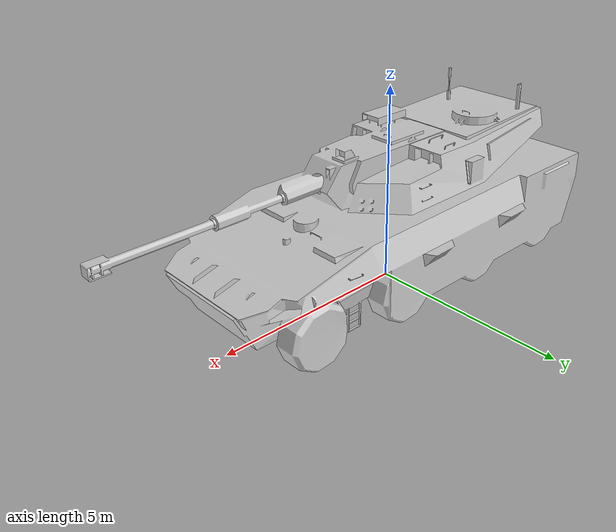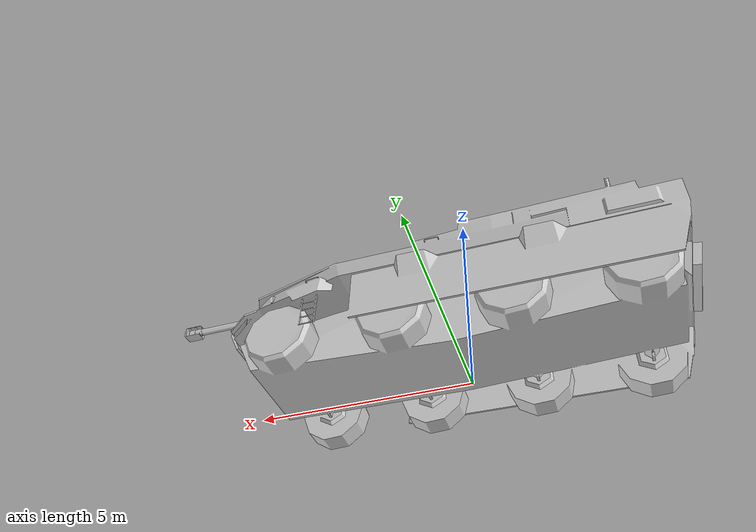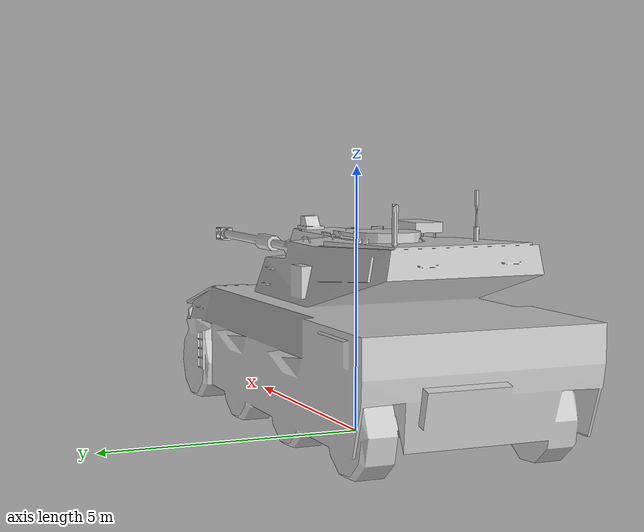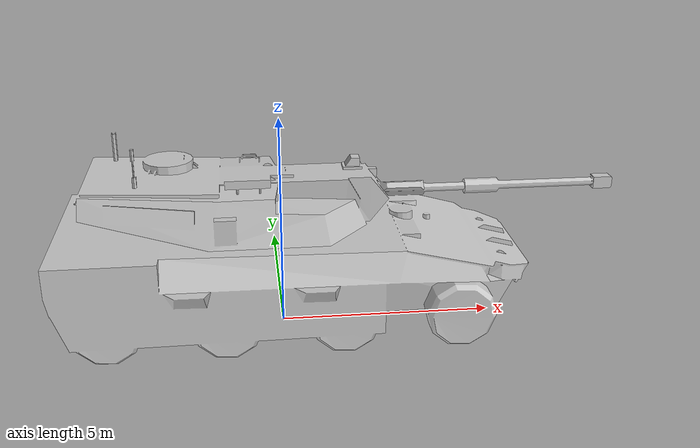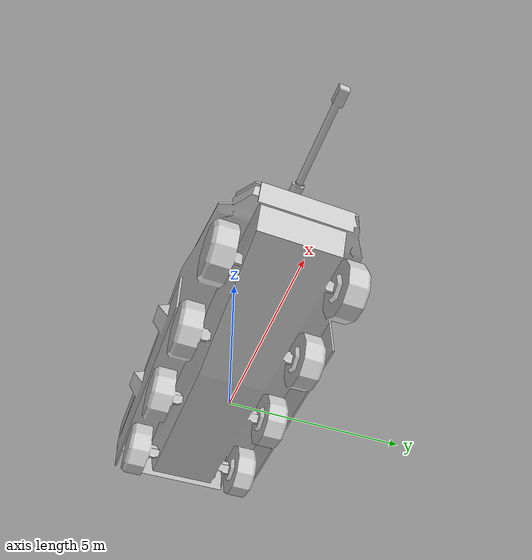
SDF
<?xml version='1.0'?>
<sdf version='1.5'>
  <model name='Tank'>
    <static>true</static>
    <link name="tank">

        <visual name="visual">
        <geometry>
                <mesh>
                    <uri>model://tank/meshes/tank.dae</uri>
                </mesh>
            </geometry>
        </visual>
         <collision name="collision">
                <geometry>
                <mesh>
                    <uri>model://tank/meshes/tank.dae</uri>
                </mesh>
            </geometry>
        </collision>

    </link>
  </model>
</sdf>
~
